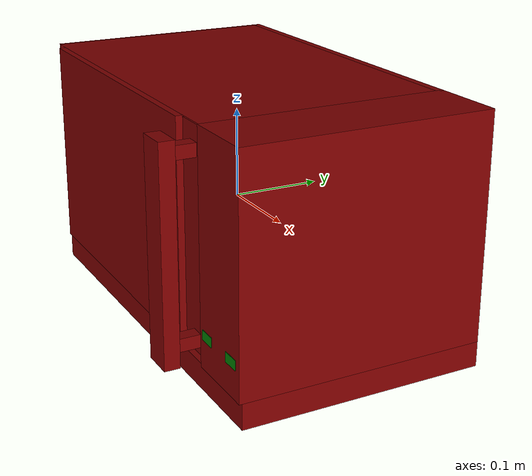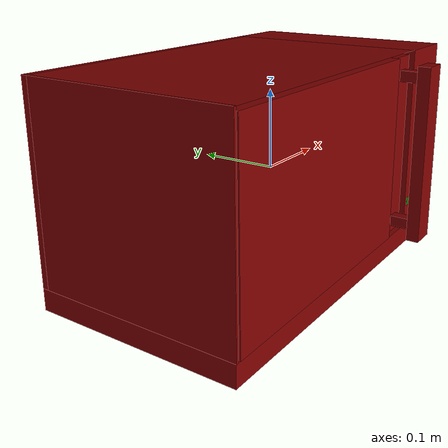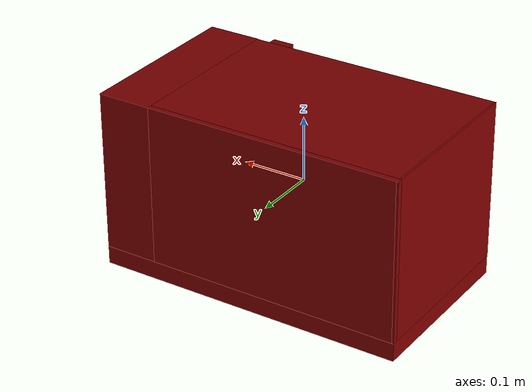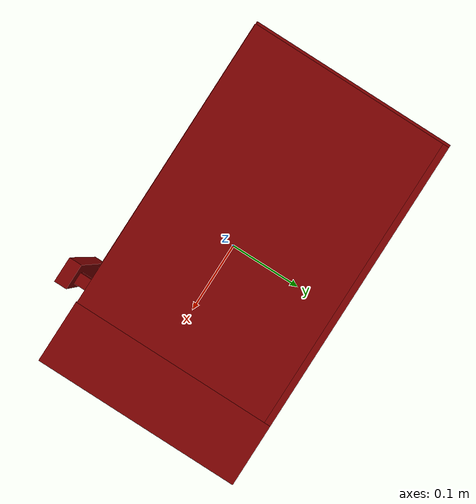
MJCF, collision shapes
<mujoco model="model">
  <compiler angle="radian"/>
  <asset>
    <mesh file="visuals/door.obj" name="door_vis"/>
    <mesh file="visuals/door_Clear.obj" name="door_Clear_vis"/>
    <mesh file="visuals/Body001.obj" name="Body001_vis"/>
    <mesh file="visuals/Disc001.obj" name="Disc001_vis"/>
    <texture file="visuals/T_BC001.png" name="Body001_material" type="2d"/>
    <material name="Body001_material" rgba="1 1 1 1.0" texture="Body001_material" shininess="0.4472135901451111" specular="0.3103448502657381"/>
    <texture file="visuals/T_BC001.png" name="door_material" type="2d"/>
    <material name="door_material" rgba="1 1 1 1.0" texture="door_material" shininess="0.4472135901451111" specular="0.3103448502657381"/>
    <material name="door_Clear_material" rgba="0.0 0.0 0.0 0.8457180857658386" shininess="0.5" specular="0.3103448502657381"/>
    <texture file="visuals/T_BC001.png" name="Disc001_material" type="2d"/>
    <material name="Disc001_material" rgba="1 1 1 1.0" texture="Disc001_material" shininess="0.4472135901451111" specular="0.3103448502657381"/>
  </asset>
  <default>
    <default class="visual">
      <geom conaffinity="0" contype="0" group="1" type="mesh"/>
    </default>
    <default class="collision">
      <geom group="0" rgba="0.5 0 0 0.5"/>
    </default>
    <default class="spawn">
      <geom group="0" rgba="1 1 1 0.5" contype="0" conaffinity="0"/>
      <site group="0" rgba="1 1 1 0.5"/>
    </default>
    <default class="region">
      <geom group="1" conaffinity="0" contype="0" rgba="0 1 0 0"/>
    </default>
  </default>
  <worldbody>
    <body>
      <body name="object">
        <geom class="collision" type="box" pos="-0.047587 0.007702 -0.099901" size="0.10339249670505524 0.10339254885911942 0.0009999960893765092" quat="1.0 0.0 0.0 0.0" name="tray" rgba="0 1 0 0.5"/>
        <geom class="collision" type="box" pos="0.225591 -0.121885 -0.072609" size="0.010324031114578247 0.00027769256848841906 0.005434299819171429" quat="1.0 0.0 0.0 0.0" name="start_button" rgba="0.0 0.5 0 0.5"/>
        <geom class="collision" type="box" pos="0.174775 -0.121790 -0.072586" size="0.010324031114578247 0.00027769256848841906 0.005434299819171429" quat="1.0 0.0 0.0 0.0" name="stop_button" rgba="0.0 0.5 0 0.5"/>
        <geom mesh="Body001_vis" type="mesh" solimp="0.998 0.998 0.001" solref="0.001 1" density="100" friction="0.95 0.3 0.1" class="visual" material="Body001_material"/>
        <geom class="collision" type="box" pos="-0.000000 0.018777 -0.124693" size="0.24220426380634308 0.13692888617515564 0.01400427520275116" quat="1.0 0.0 0.0 0.0"/>
        <geom class="collision" type="box" pos="-0.000000 0.017807 0.138697" size="0.24220426380634308 0.137898787856102 1.7693104759075595e-09" quat="1.0 0.0 0.0 0.0"/>
        <geom class="collision" type="box" pos="0.200469 0.017269 0.014000" size="0.041735488921403885 0.1384371817111969 0.12469715625047684" quat="1.0 0.0 0.0 0.0"/>
        <geom class="collision" type="box" pos="-0.240512 0.018335 0.014000" size="0.0016923586372286081 0.1373710036277771 0.12469715625047684" quat="1.0 0.0 0.0 0.0"/>
        <geom class="collision" type="box" pos="-0.039896 0.151486 0.014000" size="0.2023085355758667 0.004219771362841129 0.12469715625047684" quat="1.0 0.0 0.0 0.0"/>
        <body name="door">
          <joint axis="0.0 0.0 1.0" pos="-0.239537 -0.119537 0.003826" limited="true" name="microjoint" range="-1.5707963267948966 0.0" type="hinge" damping="1" frictionloss="1" armature=".01" stiffness="0.05"/>
          <geom mesh="door_vis" type="mesh" solimp="0.998 0.998 0.001" solref="0.001 1" density="100" friction="0.95 0.3 0.1" class="visual" material="door_material"/>
          <geom class="collision" type="box" pos="-0.064536 -0.109861 0.012862" size="0.17414313554763794 0.011307419277727604 0.12132850289344788" quat="1.0 0.0 0.0 0.0"/>
          <geom class="collision" type="box" pos="0.133479 -0.106154 0.012907" size="0.024551501497626305 0.007600898388773203 0.12012843042612076" quat="1.0 0.0 0.0 0.0"/>
          <geom class="collision" type="box" pos="0.135992 -0.126451 0.108871" size="0.007703882642090321 0.011616004630923271 0.007217427249997854" quat="1.0 0.0 0.0 0.0"/>
          <geom class="collision" type="box" pos="0.135992 -0.125560 -0.090850" size="0.007703882642090321 0.01199717354029417 0.007234529592096806" quat="1.0 0.0 0.0 0.0"/>
          <geom class="collision" type="box" pos="0.136459 -0.149678 0.007528" size="0.017230259254574776 0.008574368432164192 0.11741846054792404" quat="1.0 0.0 0.0 0.0" name="door_handle"/>
          <body name="door_Clear">
            <geom mesh="door_Clear_vis" type="mesh" solimp="0.998 0.998 0.001" solref="0.001 1" density="100" friction="0.95 0.3 0.1" class="visual" material="door_Clear_material"/>
            <geom class="collision" type="box" pos="-0.051624 -0.112742 0.001976" size="0.14047184586524963 0.002215971937403083 0.09170790016651154" quat="1.0 0.0 0.0 0.0"/>
          </body>
        </body>
        <body name="Disc001">
          <joint axis="0.0 0.0 1.0" pos="-0.047822 0.007716 -0.105470" limited="false" name="Disc001_joint" range="0 360" type="hinge" damping="1" frictionloss="1" armature=".01" stiffness="0.05"/>
          <geom mesh="Disc001_vis" type="mesh" solimp="0.998 0.998 0.001" solref="0.001 1" density="100" friction="0.95 0.3 0.1" class="visual" material="Disc001_material"/>
          <geom class="collision" type="cylinder" pos="-0.047587 0.007702 -0.105489" size="0.10339254885911942 0.0031083920039236546" quat="1.0 0.0 0.0 0.0"/>
        </body>
        <geom class="region" name="reg_main" type="box" pos="0.0 0.017269000000000007 0.0" size="0.242204 0.138437 0.138697"/>
        <geom class="region" name="reg_int" type="box" pos="-0.03914200000000001 0.017119000000000002 0.0033109999999999945" size="0.197796 0.13306300000000001 0.13100499999999998"/>
      </body>
    </body>
  </worldbody>
  <actuator>
    <motor name="microjoint_actuator" joint="microjoint" gear="10"/>
    <motor name="Disc001_joint_actuator" joint="Disc001_joint" gear="10"/>
  </actuator>
</mujoco>
